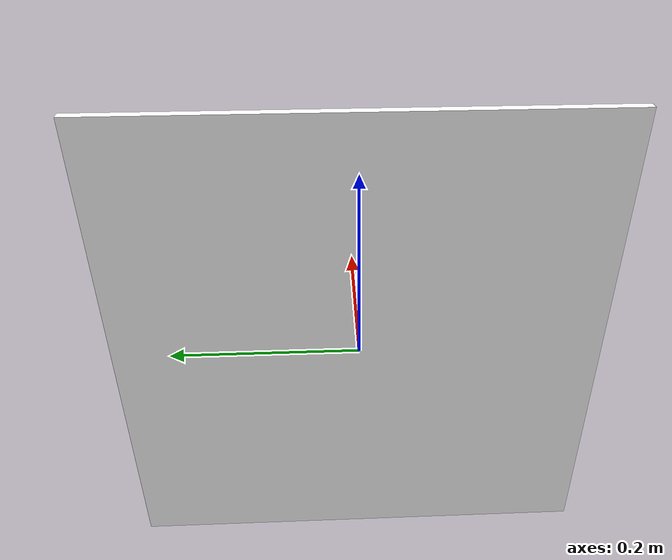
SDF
<?xml version="1.0"?>
<sdf version="1.8">
  <model name="aruco_marker">
    <static>true</static>
    <link name="link">
      <!-- White border backing plate -->
      <visual name="backing">
        <geometry>
          <box><size>0.01 0.52 0.52</size></box>
        </geometry>
        <material>
          <ambient>1 1 1 1</ambient>
          <diffuse>1 1 1 1</diffuse>
          <specular>0.05 0.05 0.05 1</specular>
        </material>
      </visual>
      <!-- ArUco marker face with texture -->
      <visual name="marker_face">
        <pose>0.006 0 0 0 0 0</pose>
        <geometry>
          <box><size>0.001 0.45 0.45</size></box>
        </geometry>
        <material>
          <ambient>1 1 1 1</ambient>
          <diffuse>1 1 1 1</diffuse>
          <specular>0.0 0.0 0.0 1</specular>
          <pbr>
            <metal>
              <albedo_map>model://aruco_marker/meshes/aruco_marker.png</albedo_map>
              <metalness>0.0</metalness>
              <roughness>1.0</roughness>
            </metal>
          </pbr>
        </material>
      </visual>
    </link>
  </model>
</sdf>
